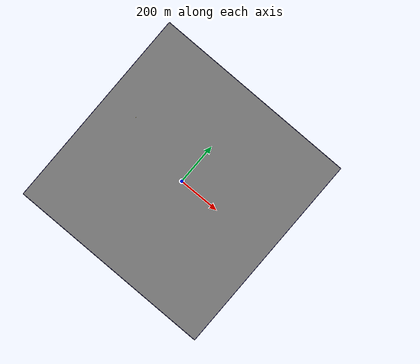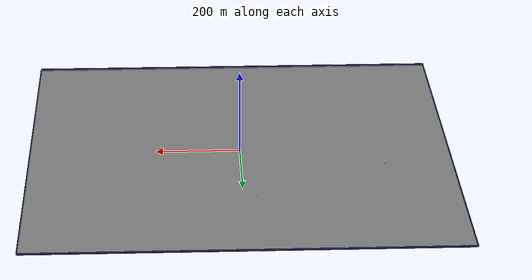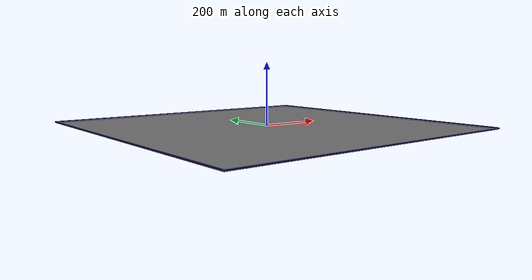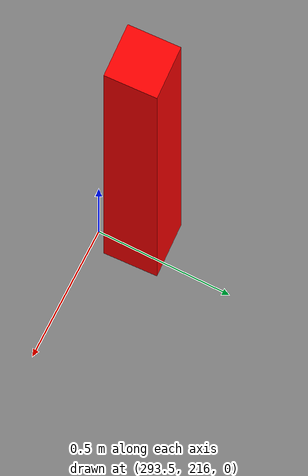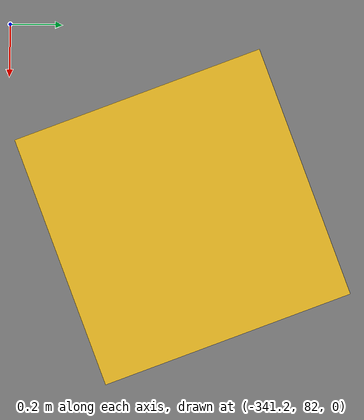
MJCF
<mujoco model="unnamed_model">
  <default>
    <default class="/" />
    <default class="border/" />
    <default class="border_1/" />
    <default class="border_2/" />
    <default class="border_3/" />
    <default class="agentplaceholder/" />
    <default class="placeholder_box/" />
    <default class="stone0/" />
    <default class="stone1/" />
    <default class="tree/" />
    <default class="tree_1/" />
  </default>
  <worldbody>
    <body name="border/">
      <body name="border/border" pos="0 501 2">
        <geom name="border/border_geom" class="border/" type="box" size="500 1 2" rgba="0.035000000000000003 0.016 0.28999999999999998 1" />
      </body>
    </body>
    <body name="border_1/">
      <body name="border_1/border" pos="0 -501 2">
        <geom name="border_1/border_geom" class="border_1/" type="box" size="500 1 2" rgba="0.035000000000000003 0.016 0.28999999999999998 1" />
      </body>
    </body>
    <body name="border_2/">
      <body name="border_2/border" pos="501 0 2">
        <geom name="border_2/border_geom" class="border_2/" type="box" size="1 500 2" rgba="0.035000000000000003 0.016 0.28999999999999998 1" />
      </body>
    </body>
    <body name="border_3/">
      <body name="border_3/border" pos="-501 0 2">
        <geom name="border_3/border_geom" class="border_3/" type="box" size="1 500 2" rgba="0.035000000000000003 0.016 0.28999999999999998 1" />
      </body>
    </body>
    <body euler="0 0 -83.041480779901065" name="agentplaceholder/">
      <joint name="agentplaceholder/boxagent_freeJoint/" class="/" type="free" />
      <body name="agentplaceholder/agentplaceholder" pos="-250 0 3" euler="0 0 0">
        <geom name="agentplaceholder/boxagent_geom" class="agentplaceholder/" type="box" size="0.5 0.5 0.5" rgba="0.94899999999999995 0.74509999999999998 0.1333 1" euler="0 0 0" />
      </body>
    </body>
    <body name="placeholder_box/">
      <body name="placeholder_box/placeholder_box" pos="-340.47135000000003 82.669700000000034 0.5" euler="0 0 -68.824862527723411">
        <geom name="placeholder_box/box_geom" class="placeholder_box/" type="box" size="0.5 0.5 0.5" rgba="0.94899999999999995 0.74509999999999998 0.1333 1" euler="0 0 0" />
      </body>
    </body>
    <body name="stone0/">
      <body name="stone0/stone0" pos="166.6763 426.50379999999996 0.10000000000000001" euler="0 0 38.949122109811071">
        <geom name="stone0/stone_geom" class="stone0/" type="box" size="0.10000000000000001 0.10000000000000001 2" rgba="1 0 0 1" />
      </body>
    </body>
    <body name="stone1/">
      <body name="stone1/stone1" pos="275.97410000000002 -350.25990000000002 0.10000000000000001" euler="0 0 -90.417345969255493">
        <geom name="stone1/stone_geom" class="stone1/" type="box" size="0.10000000000000001 0.10000000000000001 2" rgba="1 0 0 1" />
      </body>
    </body>
    <body name="tree/">
      <body name="tree/tree" pos="293.45519999999999 216.14449999999999 0.10000000000000001" euler="0 0 92.612654460171768">
        <geom name="tree/tree_geom" class="tree/" type="box" size="0.10000000000000001 0.10000000000000001 2" rgba="1 0 0 1" />
      </body>
    </body>
    <body name="tree_1/">
      <body name="tree_1/tree" pos="175.38445000000002 26.884500000000003 0.10000000000000001" euler="0 0 -173.23510357381522">
        <geom name="tree_1/tree_geom" class="tree_1/" type="box" size="0.10000000000000001 0.10000000000000001 2" rgba="1 0 0 1" />
      </body>
    </body>
    <geom name="base_plane" class="/" type="plane" size="500 500 0.10000000000000001" />
  </worldbody>
</mujoco>
